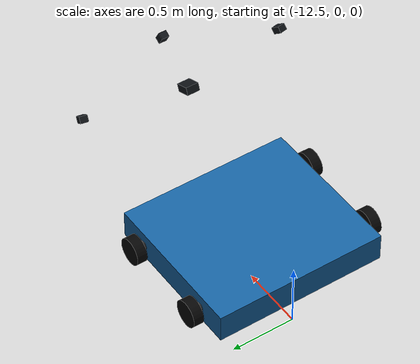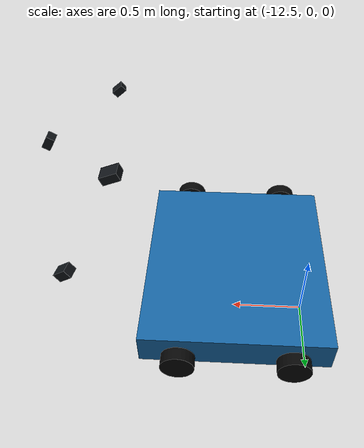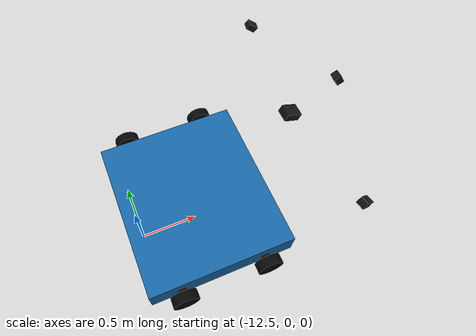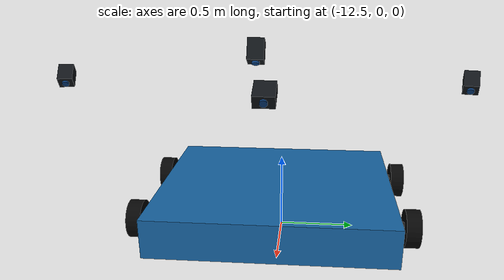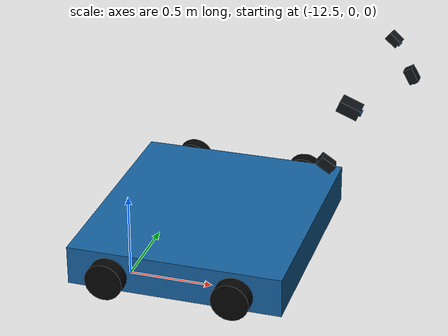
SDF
<sdf version="1.7">
 <world name="route_choice_training">
  <include>
   <uri>model://metro_route_training_car</uri>
   <name>route_training_robot</name>
   <pose>-12 0 0.42 0 0 0</pose>
  </include>
 </world>
</sdf>
